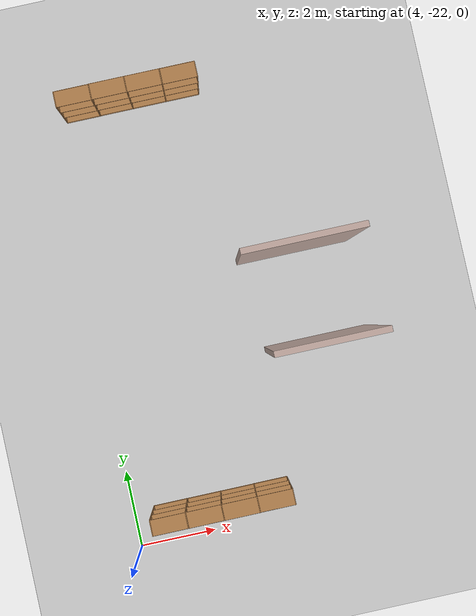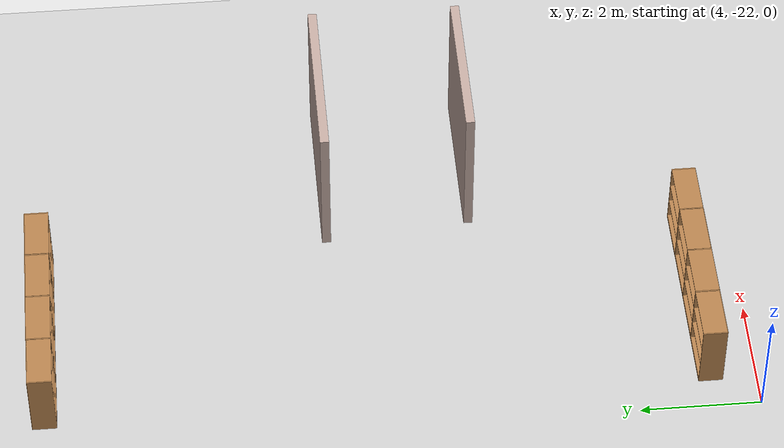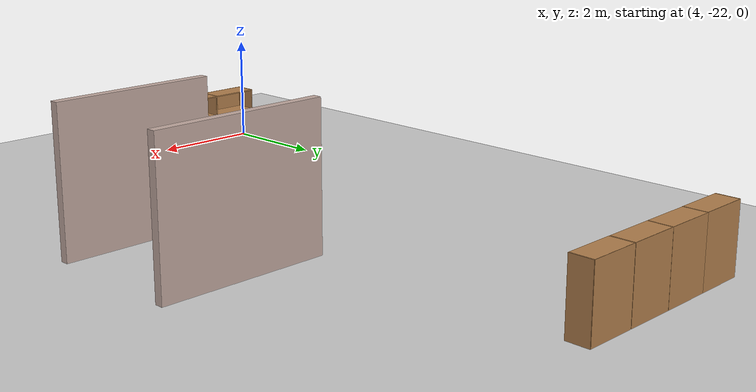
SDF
<sdf version="1.6">
 <world name="default">
  <model name="ground_plane">
   <static>1</static>
   <link name="link">
    <collision name="collision">
     <geometry><plane><normal>0 0 1</normal><size>100 100</size></plane></geometry>
     <surface><friction><ode><mu>100</mu><mu2>50</mu2></ode></friction></surface>
    </collision>
    <visual name="visual">
     <cast_shadows>0</cast_shadows>
     <geometry><plane><normal>0 0 1</normal><size>100 100</size></plane></geometry>
     <material>
      <script><uri>file://media/materials/scripts/gazebo.material</uri><name>Gazebo/Grey</name></script>
     </material>
    </visual>
   </link>
  </model>
  <model name="floor">
   <link name="Wall_119">
    <pose>8.30314 -13.8987 0 0 -0 0</pose>
    <visual name="Wall_119_Visual">
     <pose>0 0 1.25 0 -0 0</pose>
     <geometry><box><size>3 0.15 2.5</size></box></geometry>
     <material>
      <script><uri>file://media/materials/scripts/gazebo.material</uri><name>Gazebo/Grey</name></script>
      <ambient>0.760784 0.662745 0.627451 1</ambient>
     </material>
     <meta><layer>0</layer></meta>
    </visual>
    <collision name="Wall_119_Collision">
     <pose>0 0 1.25 0 -0 0</pose>
     <geometry><box><size>3 0.15 2.5</size></box></geometry>
     <surface>
      <friction>
       <ode><mu>1</mu><mu2>1</mu2><fdir1>0 0 0</fdir1><slip1>0</slip1><slip2>0</slip2></ode>
       <torsional>
        <coefficient>1</coefficient>
        <patch_radius>0</patch_radius>
        <surface_radius>0</surface_radius>
        <use_patch_radius>1</use_patch_radius>
        <ode><slip>0</slip></ode>
       </torsional>
      </friction>
      <bounce><restitution_coefficient>0</restitution_coefficient><threshold>1e+06</threshold></bounce>
      <contact>
       <collide_without_contact>0</collide_without_contact>
       <collide_without_contact_bitmask>1</collide_without_contact_bitmask>
       <collide_bitmask>1</collide_bitmask>
       <ode>
        <soft_cfm>0</soft_cfm>
        <soft_erp>0.2</soft_erp>
        <kp>1e+13</kp>
        <kd>1</kd>
        <max_vel>0.01</max_vel>
        <min_depth>0</min_depth>
       </ode>
       <bullet>
        <split_impulse>1</split_impulse>
        <split_impulse_penetration_threshold>-0.01</split_impulse_penetration_threshold>
        <soft_cfm>0</soft_cfm>
        <soft_erp>0.2</soft_erp>
        <kp>1e+13</kp>
        <kd>1</kd>
       </bullet>
      </contact>
     </surface>
    </collision>
   </link>
   <link name="Wall_129">
    <pose>8.42225 -16.3406 0 0 -0 0</pose>
    <visual name="Wall_129_Visual">
     <pose>0 0 1.25 0 -0 0</pose>
     <geometry><box><size>2.75 0.15 2.5</size></box></geometry>
     <material>
      <script><uri>file://media/materials/scripts/gazebo.material</uri><name>Gazebo/Grey</name></script>
      <ambient>0.760784 0.662745 0.627451 1</ambient>
     </material>
     <meta><layer>0</layer></meta>
    </visual>
    <collision name="Wall_129_Collision">
     <pose>0 0 1.25 0 -0 0</pose>
     <geometry><box><size>2.75 0.15 2.5</size></box></geometry>
     <surface>
      <friction>
       <ode><mu>1</mu><mu2>1</mu2><fdir1>0 0 0</fdir1><slip1>0</slip1><slip2>0</slip2></ode>
       <torsional>
        <coefficient>1</coefficient>
        <patch_radius>0</patch_radius>
        <surface_radius>0</surface_radius>
        <use_patch_radius>1</use_patch_radius>
        <ode><slip>0</slip></ode>
       </torsional>
      </friction>
      <bounce><restitution_coefficient>0</restitution_coefficient><threshold>1e+06</threshold></bounce>
      <contact>
       <collide_without_contact>0</collide_without_contact>
       <collide_without_contact_bitmask>1</collide_without_contact_bitmask>
       <collide_bitmask>1</collide_bitmask>
       <ode>
        <soft_cfm>0</soft_cfm>
        <soft_erp>0.2</soft_erp>
        <kp>1e+13</kp>
        <kd>1</kd>
        <max_vel>0.01</max_vel>
        <min_depth>0</min_depth>
       </ode>
       <bullet>
        <split_impulse>1</split_impulse>
        <split_impulse_penetration_threshold>-0.01</split_impulse_penetration_threshold>
        <soft_cfm>0</soft_cfm>
        <soft_erp>0.2</soft_erp>
        <kp>1e+13</kp>
        <kd>1</kd>
       </bullet>
      </contact>
     </surface>
    </collision>
   </link>
   <static>1</static>
   <pose>1.26361 -1.27025 0 0 -0 0</pose>
  </model>
  <model name="Bookshelf-4_clone_14">
   <model name="bookshelf">
    <static>1</static>
    <link name="link">
     <inertial><mass>1</mass></inertial>
     <collision name="back">
      <pose>0 0.005 0.6 0 -0 0</pose>
      <geometry><box><size>0.9 0.01 1.2</size></box></geometry>
     </collision>
     <visual name="visual1">
      <pose>0 0.005 0.6 0 -0 0</pose>
      <geometry><box><size>0.9 0.01 1.2</size></box></geometry>
      <material>
       <script><uri>file://media/materials/scripts/gazebo.material</uri><name>Gazebo/Wood</name></script>
      </material>
     </visual>
     <collision name="left_side">
      <pose>0.45 -0.195 0.6 0 -0 0</pose>
      <geometry><box><size>0.02 0.4 1.2</size></box></geometry>
     </collision>
     <visual name="visual2">
      <pose>0.45 -0.195 0.6 0 -0 0</pose>
      <geometry><box><size>0.02 0.4 1.2</size></box></geometry>
      <material>
       <script><uri>file://media/materials/scripts/gazebo.material</uri><name>Gazebo/Wood</name></script>
      </material>
     </visual>
     <collision name="right_side">
      <pose>-0.45 -0.195 0.6 0 -0 0</pose>
      <geometry><box><size>0.02 0.4 1.2</size></box></geometry>
     </collision>
     <visual name="visual3">
      <pose>-0.45 -0.195 0.6 0 -0 0</pose>
      <geometry><box><size>0.02 0.4 1.2</size></box></geometry>
      <material>
       <script><uri>file://media/materials/scripts/gazebo.material</uri><name>Gazebo/Wood</name></script>
      </material>
     </visual>
     <collision name="bottom">
      <pose>0 -0.195 0.03 0 -0 0</pose>
      <geometry><box><size>0.88 0.4 0.06</size></box></geometry>
     </collision>
     <visual name="visual4">
      <pose>0 -0.195 0.03 0 -0 0</pose>
      <geometry><box><size>0.88 0.4 0.06</size></box></geometry>
      <material>
       <script><uri>file://media/materials/scripts/gazebo.material</uri><name>Gazebo/Wood</name></script>
      </material>
     </visual>
     <collision name="top">
      <pose>0 -0.195 1.19 0 -0 0</pose>
      <geometry><box><size>0.88 0.4 0.02</size></box></geometry>
     </collision>
     <visual name="visual5">
      <pose>0 -0.195 1.19 0 -0 0</pose>
      <geometry><box><size>0.88 0.4 0.02</size></box></geometry>
      <material>
       <script><uri>file://media/materials/scripts/gazebo.material</uri><name>Gazebo/Wood</name></script>
      </material>
     </visual>
     <collision name="low_shelf">
      <pose>0 -0.195 0.43 0 -0 0</pose>
      <geometry><box><size>0.88 0.4 0.02</size></box></geometry>
     </collision>
     <visual name="visual6">
      <pose>0 -0.195 0.43 0 -0 0</pose>
      <geometry><box><size>0.88 0.4 0.02</size></box></geometry>
      <material>
       <script><uri>file://media/materials/scripts/gazebo.material</uri><name>Gazebo/Wood</name></script>
      </material>
     </visual>
     <collision name="high_shelf">
      <pose>0 -0.195 0.8 0 -0 0</pose>
      <geometry><box><size>0.88 0.4 0.02</size></box></geometry>
     </collision>
     <visual name="visual7">
      <pose>0 -0.195 0.8 0 -0 0</pose>
      <geometry><box><size>0.88 0.4 0.02</size></box></geometry>
      <material>
       <script><uri>file://media/materials/scripts/gazebo.material</uri><name>Gazebo/Wood</name></script>
      </material>
     </visual>
    </link>
    <pose>-1.35671 -0.002097 0 0 -0 0</pose>
   </model>
   <model name="bookshelf_0">
    <static>1</static>
    <link name="link">
     <inertial><mass>1</mass></inertial>
     <collision name="back">
      <pose>0 0.005 0.6 0 -0 0</pose>
      <geometry><box><size>0.9 0.01 1.2</size></box></geometry>
     </collision>
     <visual name="visual1">
      <pose>0 0.005 0.6 0 -0 0</pose>
      <geometry><box><size>0.9 0.01 1.2</size></box></geometry>
      <material>
       <script><uri>file://media/materials/scripts/gazebo.material</uri><name>Gazebo/Wood</name></script>
      </material>
     </visual>
     <collision name="left_side">
      <pose>0.45 -0.195 0.6 0 -0 0</pose>
      <geometry><box><size>0.02 0.4 1.2</size></box></geometry>
     </collision>
     <visual name="visual2">
      <pose>0.45 -0.195 0.6 0 -0 0</pose>
      <geometry><box><size>0.02 0.4 1.2</size></box></geometry>
      <material>
       <script><uri>file://media/materials/scripts/gazebo.material</uri><name>Gazebo/Wood</name></script>
      </material>
     </visual>
     <collision name="right_side">
      <pose>-0.45 -0.195 0.6 0 -0 0</pose>
      <geometry><box><size>0.02 0.4 1.2</size></box></geometry>
     </collision>
     <visual name="visual3">
      <pose>-0.45 -0.195 0.6 0 -0 0</pose>
      <geometry><box><size>0.02 0.4 1.2</size></box></geometry>
      <material>
       <script><uri>file://media/materials/scripts/gazebo.material</uri><name>Gazebo/Wood</name></script>
      </material>
     </visual>
     <collision name="bottom">
      <pose>0 -0.195 0.03 0 -0 0</pose>
      <geometry><box><size>0.88 0.4 0.06</size></box></geometry>
     </collision>
     <visual name="visual4">
      <pose>0 -0.195 0.03 0 -0 0</pose>
      <geometry><box><size>0.88 0.4 0.06</size></box></geometry>
      <material>
       <script><uri>file://media/materials/scripts/gazebo.material</uri><name>Gazebo/Wood</name></script>
      </material>
     </visual>
     <collision name="top">
      <pose>0 -0.195 1.19 0 -0 0</pose>
      <geometry><box><size>0.88 0.4 0.02</size></box></geometry>
     </collision>
     <visual name="visual5">
      <pose>0 -0.195 1.19 0 -0 0</pose>
      <geometry><box><size>0.88 0.4 0.02</size></box></geometry>
      <material>
       <script><uri>file://media/materials/scripts/gazebo.material</uri><name>Gazebo/Wood</name></script>
      </material>
     </visual>
     <collision name="low_shelf">
      <pose>0 -0.195 0.43 0 -0 0</pose>
      <geometry><box><size>0.88 0.4 0.02</size></box></geometry>
     </collision>
     <visual name="visual6">
      <pose>0 -0.195 0.43 0 -0 0</pose>
      <geometry><box><size>0.88 0.4 0.02</size></box></geometry>
      <material>
       <script><uri>file://media/materials/scripts/gazebo.material</uri><name>Gazebo/Wood</name></script>
      </material>
     </visual>
     <collision name="high_shelf">
      <pose>0 -0.195 0.8 0 -0 0</pose>
      <geometry><box><size>0.88 0.4 0.02</size></box></geometry>
     </collision>
     <visual name="visual7">
      <pose>0 -0.195 0.8 0 -0 0</pose>
      <geometry><box><size>0.88 0.4 0.02</size></box></geometry>
      <material>
       <script><uri>file://media/materials/scripts/gazebo.material</uri><name>Gazebo/Wood</name></script>
      </material>
     </visual>
    </link>
    <pose>-0.452974 0.001386 0 0 -0 0</pose>
   </model>
   <model name="bookshelf_1">
    <static>1</static>
    <link name="link">
     <inertial><mass>1</mass></inertial>
     <collision name="back">
      <pose>0 0.005 0.6 0 -0 0</pose>
      <geometry><box><size>0.9 0.01 1.2</size></box></geometry>
     </collision>
     <visual name="visual1">
      <pose>0 0.005 0.6 0 -0 0</pose>
      <geometry><box><size>0.9 0.01 1.2</size></box></geometry>
      <material>
       <script><uri>file://media/materials/scripts/gazebo.material</uri><name>Gazebo/Wood</name></script>
      </material>
     </visual>
     <collision name="left_side">
      <pose>0.45 -0.195 0.6 0 -0 0</pose>
      <geometry><box><size>0.02 0.4 1.2</size></box></geometry>
     </collision>
     <visual name="visual2">
      <pose>0.45 -0.195 0.6 0 -0 0</pose>
      <geometry><box><size>0.02 0.4 1.2</size></box></geometry>
      <material>
       <script><uri>file://media/materials/scripts/gazebo.material</uri><name>Gazebo/Wood</name></script>
      </material>
     </visual>
     <collision name="right_side">
      <pose>-0.45 -0.195 0.6 0 -0 0</pose>
      <geometry><box><size>0.02 0.4 1.2</size></box></geometry>
     </collision>
     <visual name="visual3">
      <pose>-0.45 -0.195 0.6 0 -0 0</pose>
      <geometry><box><size>0.02 0.4 1.2</size></box></geometry>
      <material>
       <script><uri>file://media/materials/scripts/gazebo.material</uri><name>Gazebo/Wood</name></script>
      </material>
     </visual>
     <collision name="bottom">
      <pose>0 -0.195 0.03 0 -0 0</pose>
      <geometry><box><size>0.88 0.4 0.06</size></box></geometry>
     </collision>
     <visual name="visual4">
      <pose>0 -0.195 0.03 0 -0 0</pose>
      <geometry><box><size>0.88 0.4 0.06</size></box></geometry>
      <material>
       <script><uri>file://media/materials/scripts/gazebo.material</uri><name>Gazebo/Wood</name></script>
      </material>
     </visual>
     <collision name="top">
      <pose>0 -0.195 1.19 0 -0 0</pose>
      <geometry><box><size>0.88 0.4 0.02</size></box></geometry>
     </collision>
     <visual name="visual5">
      <pose>0 -0.195 1.19 0 -0 0</pose>
      <geometry><box><size>0.88 0.4 0.02</size></box></geometry>
      <material>
       <script><uri>file://media/materials/scripts/gazebo.material</uri><name>Gazebo/Wood</name></script>
      </material>
     </visual>
     <collision name="low_shelf">
      <pose>0 -0.195 0.43 0 -0 0</pose>
      <geometry><box><size>0.88 0.4 0.02</size></box></geometry>
     </collision>
     <visual name="visual6">
      <pose>0 -0.195 0.43 0 -0 0</pose>
      <geometry><box><size>0.88 0.4 0.02</size></box></geometry>
      <material>
       <script><uri>file://media/materials/scripts/gazebo.material</uri><name>Gazebo/Wood</name></script>
      </material>
     </visual>
     <collision name="high_shelf">
      <pose>0 -0.195 0.8 0 -0 0</pose>
      <geometry><box><size>0.88 0.4 0.02</size></box></geometry>
     </collision>
     <visual name="visual7">
      <pose>0 -0.195 0.8 0 -0 0</pose>
      <geometry><box><size>0.88 0.4 0.02</size></box></geometry>
      <material>
       <script><uri>file://media/materials/scripts/gazebo.material</uri><name>Gazebo/Wood</name></script>
      </material>
     </visual>
    </link>
    <pose>0.450456 0.000733 0 0 -0 0</pose>
   </model>
   <model name="bookshelf_2">
    <static>1</static>
    <link name="link">
     <inertial><mass>1</mass></inertial>
     <collision name="back">
      <pose>0 0.005 0.6 0 -0 0</pose>
      <geometry><box><size>0.9 0.01 1.2</size></box></geometry>
     </collision>
     <visual name="visual1">
      <pose>0 0.005 0.6 0 -0 0</pose>
      <geometry><box><size>0.9 0.01 1.2</size></box></geometry>
      <material>
       <script><uri>file://media/materials/scripts/gazebo.material</uri><name>Gazebo/Wood</name></script>
      </material>
     </visual>
     <collision name="left_side">
      <pose>0.45 -0.195 0.6 0 -0 0</pose>
      <geometry><box><size>0.02 0.4 1.2</size></box></geometry>
     </collision>
     <visual name="visual2">
      <pose>0.45 -0.195 0.6 0 -0 0</pose>
      <geometry><box><size>0.02 0.4 1.2</size></box></geometry>
      <material>
       <script><uri>file://media/materials/scripts/gazebo.material</uri><name>Gazebo/Wood</name></script>
      </material>
     </visual>
     <collision name="right_side">
      <pose>-0.45 -0.195 0.6 0 -0 0</pose>
      <geometry><box><size>0.02 0.4 1.2</size></box></geometry>
     </collision>
     <visual name="visual3">
      <pose>-0.45 -0.195 0.6 0 -0 0</pose>
      <geometry><box><size>0.02 0.4 1.2</size></box></geometry>
      <material>
       <script><uri>file://media/materials/scripts/gazebo.material</uri><name>Gazebo/Wood</name></script>
      </material>
     </visual>
     <collision name="bottom">
      <pose>0 -0.195 0.03 0 -0 0</pose>
      <geometry><box><size>0.88 0.4 0.06</size></box></geometry>
     </collision>
     <visual name="visual4">
      <pose>0 -0.195 0.03 0 -0 0</pose>
      <geometry><box><size>0.88 0.4 0.06</size></box></geometry>
      <material>
       <script><uri>file://media/materials/scripts/gazebo.material</uri><name>Gazebo/Wood</name></script>
      </material>
     </visual>
     <collision name="top">
      <pose>0 -0.195 1.19 0 -0 0</pose>
      <geometry><box><size>0.88 0.4 0.02</size></box></geometry>
     </collision>
     <visual name="visual5">
      <pose>0 -0.195 1.19 0 -0 0</pose>
      <geometry><box><size>0.88 0.4 0.02</size></box></geometry>
      <material>
       <script><uri>file://media/materials/scripts/gazebo.material</uri><name>Gazebo/Wood</name></script>
      </material>
     </visual>
     <collision name="low_shelf">
      <pose>0 -0.195 0.43 0 -0 0</pose>
      <geometry><box><size>0.88 0.4 0.02</size></box></geometry>
     </collision>
     <visual name="visual6">
      <pose>0 -0.195 0.43 0 -0 0</pose>
      <geometry><box><size>0.88 0.4 0.02</size></box></geometry>
      <material>
       <script><uri>file://media/materials/scripts/gazebo.material</uri><name>Gazebo/Wood</name></script>
      </material>
     </visual>
     <collision name="high_shelf">
      <pose>0 -0.195 0.8 0 -0 0</pose>
      <geometry><box><size>0.88 0.4 0.02</size></box></geometry>
     </collision>
     <visual name="visual7">
      <pose>0 -0.195 0.8 0 -0 0</pose>
      <geometry><box><size>0.88 0.4 0.02</size></box></geometry>
      <material>
       <script><uri>file://media/materials/scripts/gazebo.material</uri><name>Gazebo/Wood</name></script>
      </material>
     </visual>
    </link>
    <pose>1.35922 -1.7e-05 0 0 -0 0</pose>
   </model>
   <static>0</static>
   <pose>6.25584 -10.1318 0 0 -0 0</pose>
  </model>
  <model name="Bookshelf-4_clone_15_clone_clone">
   <model name="bookshelf">
    <static>1</static>
    <link name="link">
     <inertial><mass>1</mass></inertial>
     <collision name="back">
      <pose>0 0.005 0.6 0 -0 0</pose>
      <geometry><box><size>0.9 0.01 1.2</size></box></geometry>
     </collision>
     <visual name="visual1">
      <pose>0 0.005 0.6 0 -0 0</pose>
      <geometry><box><size>0.9 0.01 1.2</size></box></geometry>
      <material>
       <script><uri>file://media/materials/scripts/gazebo.material</uri><name>Gazebo/Wood</name></script>
      </material>
     </visual>
     <collision name="left_side">
      <pose>0.45 -0.195 0.6 0 -0 0</pose>
      <geometry><box><size>0.02 0.4 1.2</size></box></geometry>
     </collision>
     <visual name="visual2">
      <pose>0.45 -0.195 0.6 0 -0 0</pose>
      <geometry><box><size>0.02 0.4 1.2</size></box></geometry>
      <material>
       <script><uri>file://media/materials/scripts/gazebo.material</uri><name>Gazebo/Wood</name></script>
      </material>
     </visual>
     <collision name="right_side">
      <pose>-0.45 -0.195 0.6 0 -0 0</pose>
      <geometry><box><size>0.02 0.4 1.2</size></box></geometry>
     </collision>
     <visual name="visual3">
      <pose>-0.45 -0.195 0.6 0 -0 0</pose>
      <geometry><box><size>0.02 0.4 1.2</size></box></geometry>
      <material>
       <script><uri>file://media/materials/scripts/gazebo.material</uri><name>Gazebo/Wood</name></script>
      </material>
     </visual>
     <collision name="bottom">
      <pose>0 -0.195 0.03 0 -0 0</pose>
      <geometry><box><size>0.88 0.4 0.06</size></box></geometry>
     </collision>
     <visual name="visual4">
      <pose>0 -0.195 0.03 0 -0 0</pose>
      <geometry><box><size>0.88 0.4 0.06</size></box></geometry>
      <material>
       <script><uri>file://media/materials/scripts/gazebo.material</uri><name>Gazebo/Wood</name></script>
      </material>
     </visual>
     <collision name="top">
      <pose>0 -0.195 1.19 0 -0 0</pose>
      <geometry><box><size>0.88 0.4 0.02</size></box></geometry>
     </collision>
     <visual name="visual5">
      <pose>0 -0.195 1.19 0 -0 0</pose>
      <geometry><box><size>0.88 0.4 0.02</size></box></geometry>
      <material>
       <script><uri>file://media/materials/scripts/gazebo.material</uri><name>Gazebo/Wood</name></script>
      </material>
     </visual>
     <collision name="low_shelf">
      <pose>0 -0.195 0.43 0 -0 0</pose>
      <geometry><box><size>0.88 0.4 0.02</size></box></geometry>
     </collision>
     <visual name="visual6">
      <pose>0 -0.195 0.43 0 -0 0</pose>
      <geometry><box><size>0.88 0.4 0.02</size></box></geometry>
      <material>
       <script><uri>file://media/materials/scripts/gazebo.material</uri><name>Gazebo/Wood</name></script>
      </material>
     </visual>
     <collision name="high_shelf">
      <pose>0 -0.195 0.8 0 -0 0</pose>
      <geometry><box><size>0.88 0.4 0.02</size></box></geometry>
     </collision>
     <visual name="visual7">
      <pose>0 -0.195 0.8 0 -0 0</pose>
      <geometry><box><size>0.88 0.4 0.02</size></box></geometry>
      <material>
       <script><uri>file://media/materials/scripts/gazebo.material</uri><name>Gazebo/Wood</name></script>
      </material>
     </visual>
    </link>
    <pose>-1.35671 -0.002097 0 0 -0 0</pose>
   </model>
   <model name="bookshelf_0">
    <static>1</static>
    <link name="link">
     <inertial><mass>1</mass></inertial>
     <collision name="back">
      <pose>0 0.005 0.6 0 -0 0</pose>
      <geometry><box><size>0.9 0.01 1.2</size></box></geometry>
     </collision>
     <visual name="visual1">
      <pose>0 0.005 0.6 0 -0 0</pose>
      <geometry><box><size>0.9 0.01 1.2</size></box></geometry>
      <material>
       <script><uri>file://media/materials/scripts/gazebo.material</uri><name>Gazebo/Wood</name></script>
      </material>
     </visual>
     <collision name="left_side">
      <pose>0.45 -0.195 0.6 0 -0 0</pose>
      <geometry><box><size>0.02 0.4 1.2</size></box></geometry>
     </collision>
     <visual name="visual2">
      <pose>0.45 -0.195 0.6 0 -0 0</pose>
      <geometry><box><size>0.02 0.4 1.2</size></box></geometry>
      <material>
       <script><uri>file://media/materials/scripts/gazebo.material</uri><name>Gazebo/Wood</name></script>
      </material>
     </visual>
     <collision name="right_side">
      <pose>-0.45 -0.195 0.6 0 -0 0</pose>
      <geometry><box><size>0.02 0.4 1.2</size></box></geometry>
     </collision>
     <visual name="visual3">
      <pose>-0.45 -0.195 0.6 0 -0 0</pose>
      <geometry><box><size>0.02 0.4 1.2</size></box></geometry>
      <material>
       <script><uri>file://media/materials/scripts/gazebo.material</uri><name>Gazebo/Wood</name></script>
      </material>
     </visual>
     <collision name="bottom">
      <pose>0 -0.195 0.03 0 -0 0</pose>
      <geometry><box><size>0.88 0.4 0.06</size></box></geometry>
     </collision>
     <visual name="visual4">
      <pose>0 -0.195 0.03 0 -0 0</pose>
      <geometry><box><size>0.88 0.4 0.06</size></box></geometry>
      <material>
       <script><uri>file://media/materials/scripts/gazebo.material</uri><name>Gazebo/Wood</name></script>
      </material>
     </visual>
     <collision name="top">
      <pose>0 -0.195 1.19 0 -0 0</pose>
      <geometry><box><size>0.88 0.4 0.02</size></box></geometry>
     </collision>
     <visual name="visual5">
      <pose>0 -0.195 1.19 0 -0 0</pose>
      <geometry><box><size>0.88 0.4 0.02</size></box></geometry>
      <material>
       <script><uri>file://media/materials/scripts/gazebo.material</uri><name>Gazebo/Wood</name></script>
      </material>
     </visual>
     <collision name="low_shelf">
      <pose>0 -0.195 0.43 0 -0 0</pose>
      <geometry><box><size>0.88 0.4 0.02</size></box></geometry>
     </collision>
     <visual name="visual6">
      <pose>0 -0.195 0.43 0 -0 0</pose>
      <geometry><box><size>0.88 0.4 0.02</size></box></geometry>
      <material>
       <script><uri>file://media/materials/scripts/gazebo.material</uri><name>Gazebo/Wood</name></script>
      </material>
     </visual>
     <collision name="high_shelf">
      <pose>0 -0.195 0.8 0 -0 0</pose>
      <geometry><box><size>0.88 0.4 0.02</size></box></geometry>
     </collision>
     <visual name="visual7">
      <pose>0 -0.195 0.8 0 -0 0</pose>
      <geometry><box><size>0.88 0.4 0.02</size></box></geometry>
      <material>
       <script><uri>file://media/materials/scripts/gazebo.material</uri><name>Gazebo/Wood</name></script>
      </material>
     </visual>
    </link>
    <pose>-0.452974 0.001386 0 0 -0 0</pose>
   </model>
   <model name="bookshelf_1">
    <static>1</static>
    <link name="link">
     <inertial><mass>1</mass></inertial>
     <collision name="back">
      <pose>0 0.005 0.6 0 -0 0</pose>
      <geometry><box><size>0.9 0.01 1.2</size></box></geometry>
     </collision>
     <visual name="visual1">
      <pose>0 0.005 0.6 0 -0 0</pose>
      <geometry><box><size>0.9 0.01 1.2</size></box></geometry>
      <material>
       <script><uri>file://media/materials/scripts/gazebo.material</uri><name>Gazebo/Wood</name></script>
      </material>
     </visual>
     <collision name="left_side">
      <pose>0.45 -0.195 0.6 0 -0 0</pose>
      <geometry><box><size>0.02 0.4 1.2</size></box></geometry>
     </collision>
     <visual name="visual2">
      <pose>0.45 -0.195 0.6 0 -0 0</pose>
      <geometry><box><size>0.02 0.4 1.2</size></box></geometry>
      <material>
       <script><uri>file://media/materials/scripts/gazebo.material</uri><name>Gazebo/Wood</name></script>
      </material>
     </visual>
     <collision name="right_side">
      <pose>-0.45 -0.195 0.6 0 -0 0</pose>
      <geometry><box><size>0.02 0.4 1.2</size></box></geometry>
     </collision>
     <visual name="visual3">
      <pose>-0.45 -0.195 0.6 0 -0 0</pose>
      <geometry><box><size>0.02 0.4 1.2</size></box></geometry>
      <material>
       <script><uri>file://media/materials/scripts/gazebo.material</uri><name>Gazebo/Wood</name></script>
      </material>
     </visual>
     <collision name="bottom">
      <pose>0 -0.195 0.03 0 -0 0</pose>
      <geometry><box><size>0.88 0.4 0.06</size></box></geometry>
     </collision>
     <visual name="visual4">
      <pose>0 -0.195 0.03 0 -0 0</pose>
      <geometry><box><size>0.88 0.4 0.06</size></box></geometry>
      <material>
       <script><uri>file://media/materials/scripts/gazebo.material</uri><name>Gazebo/Wood</name></script>
      </material>
     </visual>
     <collision name="top">
      <pose>0 -0.195 1.19 0 -0 0</pose>
      <geometry><box><size>0.88 0.4 0.02</size></box></geometry>
     </collision>
     <visual name="visual5">
      <pose>0 -0.195 1.19 0 -0 0</pose>
      <geometry><box><size>0.88 0.4 0.02</size></box></geometry>
      <material>
       <script><uri>file://media/materials/scripts/gazebo.material</uri><name>Gazebo/Wood</name></script>
      </material>
     </visual>
     <collision name="low_shelf">
      <pose>0 -0.195 0.43 0 -0 0</pose>
      <geometry><box><size>0.88 0.4 0.02</size></box></geometry>
     </collision>
     <visual name="visual6">
      <pose>0 -0.195 0.43 0 -0 0</pose>
      <geometry><box><size>0.88 0.4 0.02</size></box></geometry>
      <material>
       <script><uri>file://media/materials/scripts/gazebo.material</uri><name>Gazebo/Wood</name></script>
      </material>
     </visual>
     <collision name="high_shelf">
      <pose>0 -0.195 0.8 0 -0 0</pose>
      <geometry><box><size>0.88 0.4 0.02</size></box></geometry>
     </collision>
     <visual name="visual7">
      <pose>0 -0.195 0.8 0 -0 0</pose>
      <geometry><box><size>0.88 0.4 0.02</size></box></geometry>
      <material>
       <script><uri>file://media/materials/scripts/gazebo.material</uri><name>Gazebo/Wood</name></script>
      </material>
     </visual>
    </link>
    <pose>0.450456 0.000733 0 0 -0 0</pose>
   </model>
   <model name="bookshelf_2">
    <static>1</static>
    <link name="link">
     <inertial><mass>1</mass></inertial>
     <collision name="back">
      <pose>0 0.005 0.6 0 -0 0</pose>
      <geometry><box><size>0.9 0.01 1.2</size></box></geometry>
     </collision>
     <visual name="visual1">
      <pose>0 0.005 0.6 0 -0 0</pose>
      <geometry><box><size>0.9 0.01 1.2</size></box></geometry>
      <material>
       <script><uri>file://media/materials/scripts/gazebo.material</uri><name>Gazebo/Wood</name></script>
      </material>
     </visual>
     <collision name="left_side">
      <pose>0.45 -0.195 0.6 0 -0 0</pose>
      <geometry><box><size>0.02 0.4 1.2</size></box></geometry>
     </collision>
     <visual name="visual2">
      <pose>0.45 -0.195 0.6 0 -0 0</pose>
      <geometry><box><size>0.02 0.4 1.2</size></box></geometry>
      <material>
       <script><uri>file://media/materials/scripts/gazebo.material</uri><name>Gazebo/Wood</name></script>
      </material>
     </visual>
     <collision name="right_side">
      <pose>-0.45 -0.195 0.6 0 -0 0</pose>
      <geometry><box><size>0.02 0.4 1.2</size></box></geometry>
     </collision>
     <visual name="visual3">
      <pose>-0.45 -0.195 0.6 0 -0 0</pose>
      <geometry><box><size>0.02 0.4 1.2</size></box></geometry>
      <material>
       <script><uri>file://media/materials/scripts/gazebo.material</uri><name>Gazebo/Wood</name></script>
      </material>
     </visual>
     <collision name="bottom">
      <pose>0 -0.195 0.03 0 -0 0</pose>
      <geometry><box><size>0.88 0.4 0.06</size></box></geometry>
     </collision>
     <visual name="visual4">
      <pose>0 -0.195 0.03 0 -0 0</pose>
      <geometry><box><size>0.88 0.4 0.06</size></box></geometry>
      <material>
       <script><uri>file://media/materials/scripts/gazebo.material</uri><name>Gazebo/Wood</name></script>
      </material>
     </visual>
     <collision name="top">
      <pose>0 -0.195 1.19 0 -0 0</pose>
      <geometry><box><size>0.88 0.4 0.02</size></box></geometry>
     </collision>
     <visual name="visual5">
      <pose>0 -0.195 1.19 0 -0 0</pose>
      <geometry><box><size>0.88 0.4 0.02</size></box></geometry>
      <material>
       <script><uri>file://media/materials/scripts/gazebo.material</uri><name>Gazebo/Wood</name></script>
      </material>
     </visual>
     <collision name="low_shelf">
      <pose>0 -0.195 0.43 0 -0 0</pose>
      <geometry><box><size>0.88 0.4 0.02</size></box></geometry>
     </collision>
     <visual name="visual6">
      <pose>0 -0.195 0.43 0 -0 0</pose>
      <geometry><box><size>0.88 0.4 0.02</size></box></geometry>
      <material>
       <script><uri>file://media/materials/scripts/gazebo.material</uri><name>Gazebo/Wood</name></script>
      </material>
     </visual>
     <collision name="high_shelf">
      <pose>0 -0.195 0.8 0 -0 0</pose>
      <geometry><box><size>0.88 0.4 0.02</size></box></geometry>
     </collision>
     <visual name="visual7">
      <pose>0 -0.195 0.8 0 -0 0</pose>
      <geometry><box><size>0.88 0.4 0.02</size></box></geometry>
      <material>
       <script><uri>file://media/materials/scripts/gazebo.material</uri><name>Gazebo/Wood</name></script>
      </material>
     </visual>
    </link>
    <pose>1.35922 -1.7e-05 0 0 -0 0</pose>
   </model>
   <static>0</static>
   <pose>6.34855 -21.4273 0 0 -0 3.14159</pose>
  </model>
 </world>
</sdf>
